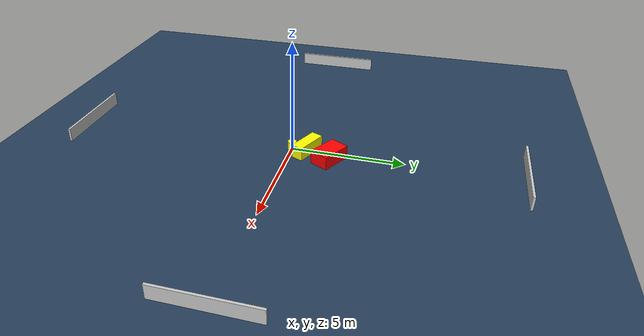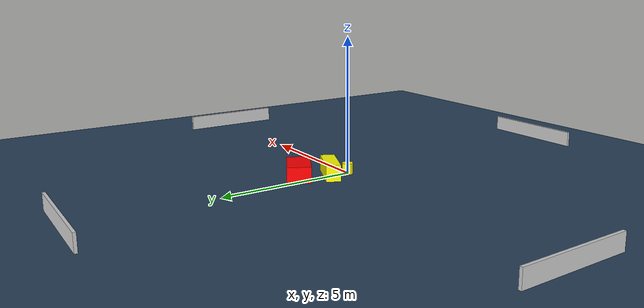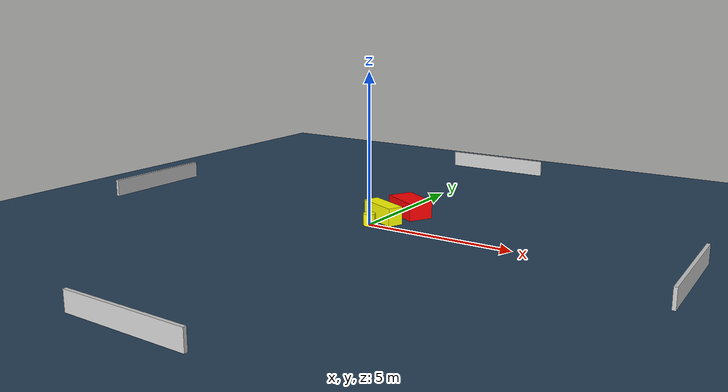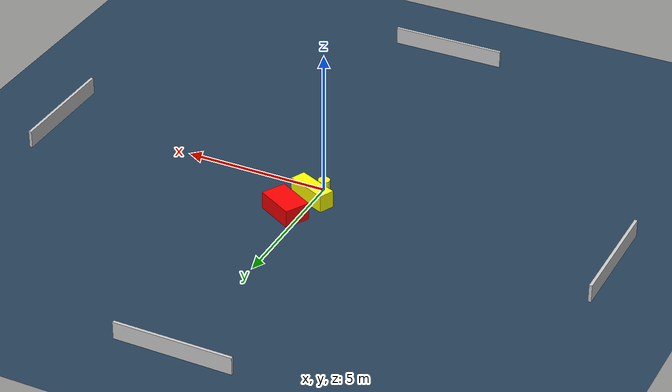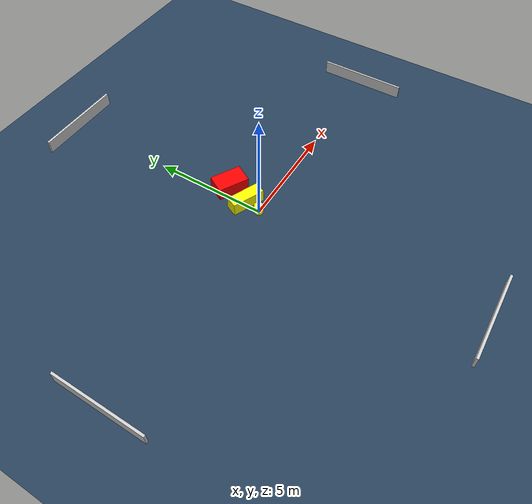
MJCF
<?xml version="1.0" ?>
<mujoco model="generated_environment">
  <option timestep="0.01" integrator="RK4" cone="elliptic"/>
  <default>
    <geom density="1"/>
  </default>
  <asset>
    <texture builtin="gradient" height="3072" name="skybox" rgb1="0.3 0.5 0.7" rgb2="0 0 0" type="skybox" width="512"/>
    <texture builtin="checker" height="300" name="groundplane" rgb1="0.2 0.3 0.4" rgb2="0.1 0.2 0.3" type="2d" width="300"/>
    <material name="groundplane" reflectance="0.2" texrepeat="5 5" texture="groundplane"/>
  </asset>
  <worldbody>
    <light dir="0 0 -1" directional="true" pos="0 0 1.5"/>
    <geom condim="3" friction="0.5 0.005 0.001" material="groundplane" name="floor" pos="0 0 0" size="0 0 0.05" type="plane"/>
    <body name="walls">
      <geom name="wall_1" condim="4" pos="-10.0 0.0 0.3" rgba="0.800000011920929 0.800000011920929 0.800000011920929 1.0" size="0.05 2.0 0.3" type="box"/>
      <geom name="wall_2" condim="4" pos="10.0 0.0 0.3" rgba="0.800000011920929 0.800000011920929 0.800000011920929 1.0" size="0.05 2.0 0.3" type="box"/>
      <geom name="wall_3" condim="4" pos="0.0 -10.0 0.3" rgba="0.800000011920929 0.800000011920929 0.800000011920929 1.0" size="2.0 0.05 0.3" type="box"/>
      <geom name="wall_4" condim="4" pos="0.0 10.0 0.3" rgba="0.800000011920929 0.800000011920929 0.800000011920929 1.0" size="2.0 0.05 0.3" type="box"/>
    </body>
    <body name="robot">
      <joint name="joint_x" type="slide" pos="0 0 0" axis="1 0 0"/>
      <joint name="joint_y" type="slide" pos="0 0 0" axis="0 1 0"/>
      <geom name="robot" type="cylinder" pos="0.0 0.0 0.2" size="0.2 0.2 0.0" mass="5.0" friction="1.0 0.005 0.0001" condim="4" rgba="1.0 1.0 0.0 1.0"/>
    </body>
    <body name="obstacle_1_movable">
      <geom name="obstacle_1_movable" condim="4" pos="0.0834216482522335 0.7030600794587132 0.3" euler="0 0 66.25592286098546" friction="0.0 0.005 0.001" rgba="1.0 1.0 0.0 1.0" size="0.266102145755396 0.7367030045174865 0.3" type="box" mass="0.1"/>
      <joint type="free"/>
    </body>
    <body name="obstacle_2_static">
      <geom name="obstacle_2_static" condim="4" pos="0.49853051143240784 1.7849877022367007 0.3" euler="0 0 150.92890758616187" friction="0.0 0.005 0.001" rgba="1.0 0.0 0.0 1.0" size="0.6971862531469606 0.4344550156208469 0.3" type="box"/>
    </body>
  </worldbody>
  <actuator>
    <motor name="actuator_x" joint="joint_x" gear="1" ctrlrange="-1 1"/>
    <motor name="actuator_y" joint="joint_y" gear="1" ctrlrange="-1 1"/>
  </actuator>
</mujoco>
